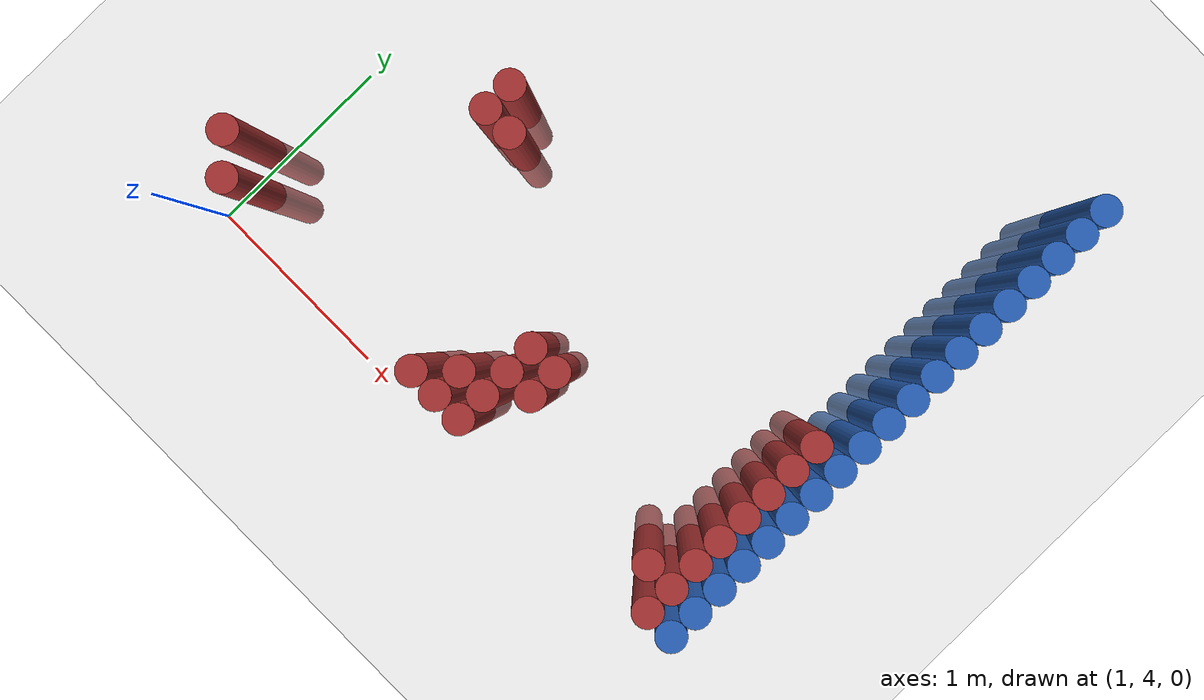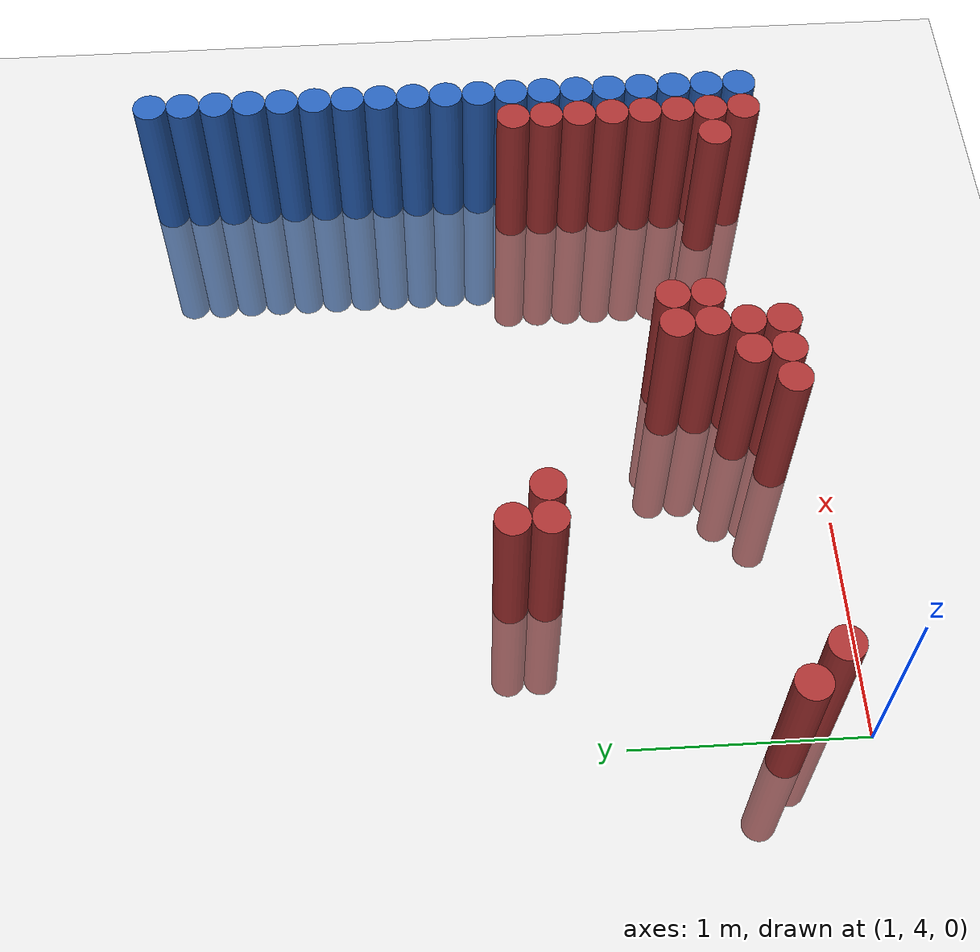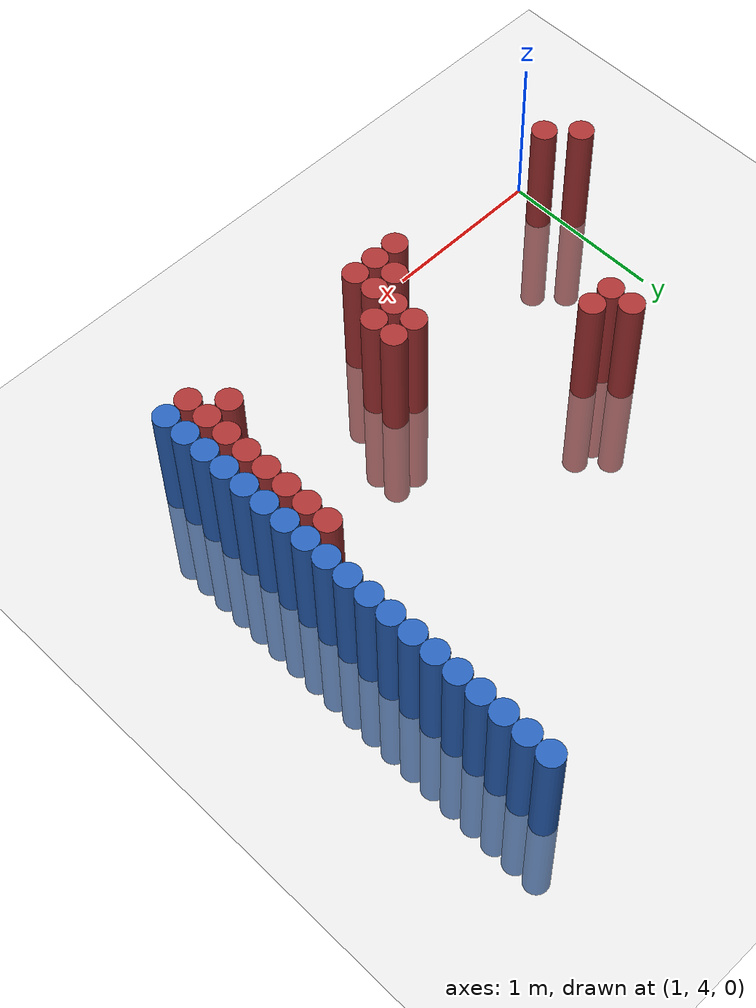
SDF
<sdf version="1.6">
 <world name="default">
  <model name="ground_plane">
   <static>1</static>
   <link name="link">
    <collision name="collision">
     <geometry><plane><normal>0 0 1</normal><size>100 100</size></plane></geometry>
     <surface><friction><ode><mu>100</mu><mu2>50</mu2></ode></friction></surface>
    </collision>
    <visual name="visual">
     <cast_shadows>0</cast_shadows>
     <geometry><plane><normal>0 0 1</normal><size>100 100</size></plane></geometry>
     <material>
      <script><uri>file://media/materials/scripts/gazebo.material</uri><name>Gazebo/Grey</name></script>
     </material>
    </visual>
   </link>
  </model>
  <model name="unit_cylinder_170">
   <static>1</static>
   <pose>3.925000 4.225000 0.000000 0.000000 0.000000 0.000000</pose>
   <link name="link">
    <inertial>
     <mass>1</mass>
     <inertia><ixx>0.145833</ixx><ixy>0</ixy><ixz>0</ixz><iyy>0.145833</iyy><iyz>0</iyz><izz>0.125</izz></inertia>
    </inertial>
    <collision name="collision">
     <geometry><cylinder><radius>0.075000</radius><length>1.5</length></cylinder></geometry>
    </collision>
    <visual name="visual">
     <geometry><cylinder><radius>0.075000</radius><length>1.5</length></cylinder></geometry>
     <material>
      <ambient>0.152000 0.379000 0.720000 1</ambient>
      <diffuse>0.152000 0.379000 0.720000 1</diffuse>
     </material>
     <material>
      <script><name>Gazebo/Grey</name><uri>file://media/materials/scripts/gazebo.material</uri></script>
     </material>
    </visual>
   </link>
  </model>
  <model name="unit_cylinder_172">
   <static>1</static>
   <pose>3.925000 4.375000 0.000000 0.000000 0.000000 0.000000</pose>
   <link name="link">
    <inertial>
     <mass>1</mass>
     <inertia><ixx>0.145833</ixx><ixy>0</ixy><ixz>0</ixz><iyy>0.145833</iyy><iyz>0</iyz><izz>0.125</izz></inertia>
    </inertial>
    <collision name="collision">
     <geometry><cylinder><radius>0.075000</radius><length>1.5</length></cylinder></geometry>
    </collision>
    <visual name="visual">
     <geometry><cylinder><radius>0.075000</radius><length>1.5</length></cylinder></geometry>
     <material>
      <ambient>0.152000 0.379000 0.720000 1</ambient>
      <diffuse>0.152000 0.379000 0.720000 1</diffuse>
     </material>
     <material>
      <script><name>Gazebo/Grey</name><uri>file://media/materials/scripts/gazebo.material</uri></script>
     </material>
    </visual>
   </link>
  </model>
  <model name="unit_cylinder_174">
   <static>1</static>
   <pose>3.925000 4.525000 0.000000 0.000000 0.000000 0.000000</pose>
   <link name="link">
    <inertial>
     <mass>1</mass>
     <inertia><ixx>0.145833</ixx><ixy>0</ixy><ixz>0</ixz><iyy>0.145833</iyy><iyz>0</iyz><izz>0.125</izz></inertia>
    </inertial>
    <collision name="collision">
     <geometry><cylinder><radius>0.075000</radius><length>1.5</length></cylinder></geometry>
    </collision>
    <visual name="visual">
     <geometry><cylinder><radius>0.075000</radius><length>1.5</length></cylinder></geometry>
     <material>
      <ambient>0.152000 0.379000 0.720000 1</ambient>
      <diffuse>0.152000 0.379000 0.720000 1</diffuse>
     </material>
     <material>
      <script><name>Gazebo/Grey</name><uri>file://media/materials/scripts/gazebo.material</uri></script>
     </material>
    </visual>
   </link>
  </model>
  <model name="unit_cylinder_176">
   <static>1</static>
   <pose>3.925000 4.675000 0.000000 0.000000 0.000000 0.000000</pose>
   <link name="link">
    <inertial>
     <mass>1</mass>
     <inertia><ixx>0.145833</ixx><ixy>0</ixy><ixz>0</ixz><iyy>0.145833</iyy><iyz>0</iyz><izz>0.125</izz></inertia>
    </inertial>
    <collision name="collision">
     <geometry><cylinder><radius>0.075000</radius><length>1.5</length></cylinder></geometry>
    </collision>
    <visual name="visual">
     <geometry><cylinder><radius>0.075000</radius><length>1.5</length></cylinder></geometry>
     <material>
      <ambient>0.152000 0.379000 0.720000 1</ambient>
      <diffuse>0.152000 0.379000 0.720000 1</diffuse>
     </material>
     <material>
      <script><name>Gazebo/Grey</name><uri>file://media/materials/scripts/gazebo.material</uri></script>
     </material>
    </visual>
   </link>
  </model>
  <model name="unit_cylinder_178">
   <static>1</static>
   <pose>3.925000 4.825000 0.000000 0.000000 0.000000 0.000000</pose>
   <link name="link">
    <inertial>
     <mass>1</mass>
     <inertia><ixx>0.145833</ixx><ixy>0</ixy><ixz>0</ixz><iyy>0.145833</iyy><iyz>0</iyz><izz>0.125</izz></inertia>
    </inertial>
    <collision name="collision">
     <geometry><cylinder><radius>0.075000</radius><length>1.5</length></cylinder></geometry>
    </collision>
    <visual name="visual">
     <geometry><cylinder><radius>0.075000</radius><length>1.5</length></cylinder></geometry>
     <material>
      <ambient>0.152000 0.379000 0.720000 1</ambient>
      <diffuse>0.152000 0.379000 0.720000 1</diffuse>
     </material>
     <material>
      <script><name>Gazebo/Grey</name><uri>file://media/materials/scripts/gazebo.material</uri></script>
     </material>
    </visual>
   </link>
  </model>
  <model name="unit_cylinder_180">
   <static>1</static>
   <pose>3.925000 4.975000 0.000000 0.000000 0.000000 0.000000</pose>
   <link name="link">
    <inertial>
     <mass>1</mass>
     <inertia><ixx>0.145833</ixx><ixy>0</ixy><ixz>0</ixz><iyy>0.145833</iyy><iyz>0</iyz><izz>0.125</izz></inertia>
    </inertial>
    <collision name="collision">
     <geometry><cylinder><radius>0.075000</radius><length>1.5</length></cylinder></geometry>
    </collision>
    <visual name="visual">
     <geometry><cylinder><radius>0.075000</radius><length>1.5</length></cylinder></geometry>
     <material>
      <ambient>0.152000 0.379000 0.720000 1</ambient>
      <diffuse>0.152000 0.379000 0.720000 1</diffuse>
     </material>
     <material>
      <script><name>Gazebo/Grey</name><uri>file://media/materials/scripts/gazebo.material</uri></script>
     </material>
    </visual>
   </link>
  </model>
  <model name="unit_cylinder_182">
   <static>1</static>
   <pose>3.925000 5.125000 0.000000 0.000000 0.000000 0.000000</pose>
   <link name="link">
    <inertial>
     <mass>1</mass>
     <inertia><ixx>0.145833</ixx><ixy>0</ixy><ixz>0</ixz><iyy>0.145833</iyy><iyz>0</iyz><izz>0.125</izz></inertia>
    </inertial>
    <collision name="collision">
     <geometry><cylinder><radius>0.075000</radius><length>1.5</length></cylinder></geometry>
    </collision>
    <visual name="visual">
     <geometry><cylinder><radius>0.075000</radius><length>1.5</length></cylinder></geometry>
     <material>
      <ambient>0.152000 0.379000 0.720000 1</ambient>
      <diffuse>0.152000 0.379000 0.720000 1</diffuse>
     </material>
     <material>
      <script><name>Gazebo/Grey</name><uri>file://media/materials/scripts/gazebo.material</uri></script>
     </material>
    </visual>
   </link>
  </model>
  <model name="unit_cylinder_184">
   <static>1</static>
   <pose>3.925000 5.275000 0.000000 0.000000 0.000000 0.000000</pose>
   <link name="link">
    <inertial>
     <mass>1</mass>
     <inertia><ixx>0.145833</ixx><ixy>0</ixy><ixz>0</ixz><iyy>0.145833</iyy><iyz>0</iyz><izz>0.125</izz></inertia>
    </inertial>
    <collision name="collision">
     <geometry><cylinder><radius>0.075000</radius><length>1.5</length></cylinder></geometry>
    </collision>
    <visual name="visual">
     <geometry><cylinder><radius>0.075000</radius><length>1.5</length></cylinder></geometry>
     <material>
      <ambient>0.152000 0.379000 0.720000 1</ambient>
      <diffuse>0.152000 0.379000 0.720000 1</diffuse>
     </material>
     <material>
      <script><name>Gazebo/Grey</name><uri>file://media/materials/scripts/gazebo.material</uri></script>
     </material>
    </visual>
   </link>
  </model>
  <model name="unit_cylinder_186">
   <static>1</static>
   <pose>3.925000 5.425000 0.000000 0.000000 0.000000 0.000000</pose>
   <link name="link">
    <inertial>
     <mass>1</mass>
     <inertia><ixx>0.145833</ixx><ixy>0</ixy><ixz>0</ixz><iyy>0.145833</iyy><iyz>0</iyz><izz>0.125</izz></inertia>
    </inertial>
    <collision name="collision">
     <geometry><cylinder><radius>0.075000</radius><length>1.5</length></cylinder></geometry>
    </collision>
    <visual name="visual">
     <geometry><cylinder><radius>0.075000</radius><length>1.5</length></cylinder></geometry>
     <material>
      <ambient>0.152000 0.379000 0.720000 1</ambient>
      <diffuse>0.152000 0.379000 0.720000 1</diffuse>
     </material>
     <material>
      <script><name>Gazebo/Grey</name><uri>file://media/materials/scripts/gazebo.material</uri></script>
     </material>
    </visual>
   </link>
  </model>
  <model name="unit_cylinder_188">
   <static>1</static>
   <pose>3.925000 5.575000 0.000000 0.000000 0.000000 0.000000</pose>
   <link name="link">
    <inertial>
     <mass>1</mass>
     <inertia><ixx>0.145833</ixx><ixy>0</ixy><ixz>0</ixz><iyy>0.145833</iyy><iyz>0</iyz><izz>0.125</izz></inertia>
    </inertial>
    <collision name="collision">
     <geometry><cylinder><radius>0.075000</radius><length>1.5</length></cylinder></geometry>
    </collision>
    <visual name="visual">
     <geometry><cylinder><radius>0.075000</radius><length>1.5</length></cylinder></geometry>
     <material>
      <ambient>0.152000 0.379000 0.720000 1</ambient>
      <diffuse>0.152000 0.379000 0.720000 1</diffuse>
     </material>
     <material>
      <script><name>Gazebo/Grey</name><uri>file://media/materials/scripts/gazebo.material</uri></script>
     </material>
    </visual>
   </link>
  </model>
  <model name="unit_cylinder_190">
   <static>1</static>
   <pose>3.925000 5.725000 0.000000 0.000000 0.000000 0.000000</pose>
   <link name="link">
    <inertial>
     <mass>1</mass>
     <inertia><ixx>0.145833</ixx><ixy>0</ixy><ixz>0</ixz><iyy>0.145833</iyy><iyz>0</iyz><izz>0.125</izz></inertia>
    </inertial>
    <collision name="collision">
     <geometry><cylinder><radius>0.075000</radius><length>1.5</length></cylinder></geometry>
    </collision>
    <visual name="visual">
     <geometry><cylinder><radius>0.075000</radius><length>1.5</length></cylinder></geometry>
     <material>
      <ambient>0.152000 0.379000 0.720000 1</ambient>
      <diffuse>0.152000 0.379000 0.720000 1</diffuse>
     </material>
     <material>
      <script><name>Gazebo/Grey</name><uri>file://media/materials/scripts/gazebo.material</uri></script>
     </material>
    </visual>
   </link>
  </model>
  <model name="unit_cylinder_192">
   <static>1</static>
   <pose>3.925000 5.875000 0.000000 0.000000 0.000000 0.000000</pose>
   <link name="link">
    <inertial>
     <mass>1</mass>
     <inertia><ixx>0.145833</ixx><ixy>0</ixy><ixz>0</ixz><iyy>0.145833</iyy><iyz>0</iyz><izz>0.125</izz></inertia>
    </inertial>
    <collision name="collision">
     <geometry><cylinder><radius>0.075000</radius><length>1.5</length></cylinder></geometry>
    </collision>
    <visual name="visual">
     <geometry><cylinder><radius>0.075000</radius><length>1.5</length></cylinder></geometry>
     <material>
      <ambient>0.152000 0.379000 0.720000 1</ambient>
      <diffuse>0.152000 0.379000 0.720000 1</diffuse>
     </material>
     <material>
      <script><name>Gazebo/Grey</name><uri>file://media/materials/scripts/gazebo.material</uri></script>
     </material>
    </visual>
   </link>
  </model>
  <model name="unit_cylinder_194">
   <static>1</static>
   <pose>3.925000 6.025000 0.000000 0.000000 0.000000 0.000000</pose>
   <link name="link">
    <inertial>
     <mass>1</mass>
     <inertia><ixx>0.145833</ixx><ixy>0</ixy><ixz>0</ixz><iyy>0.145833</iyy><iyz>0</iyz><izz>0.125</izz></inertia>
    </inertial>
    <collision name="collision">
     <geometry><cylinder><radius>0.075000</radius><length>1.5</length></cylinder></geometry>
    </collision>
    <visual name="visual">
     <geometry><cylinder><radius>0.075000</radius><length>1.5</length></cylinder></geometry>
     <material>
      <ambient>0.152000 0.379000 0.720000 1</ambient>
      <diffuse>0.152000 0.379000 0.720000 1</diffuse>
     </material>
     <material>
      <script><name>Gazebo/Grey</name><uri>file://media/materials/scripts/gazebo.material</uri></script>
     </material>
    </visual>
   </link>
  </model>
  <model name="unit_cylinder_196">
   <static>1</static>
   <pose>3.925000 6.175000 0.000000 0.000000 0.000000 0.000000</pose>
   <link name="link">
    <inertial>
     <mass>1</mass>
     <inertia><ixx>0.145833</ixx><ixy>0</ixy><ixz>0</ixz><iyy>0.145833</iyy><iyz>0</iyz><izz>0.125</izz></inertia>
    </inertial>
    <collision name="collision">
     <geometry><cylinder><radius>0.075000</radius><length>1.5</length></cylinder></geometry>
    </collision>
    <visual name="visual">
     <geometry><cylinder><radius>0.075000</radius><length>1.5</length></cylinder></geometry>
     <material>
      <ambient>0.152000 0.379000 0.720000 1</ambient>
      <diffuse>0.152000 0.379000 0.720000 1</diffuse>
     </material>
     <material>
      <script><name>Gazebo/Grey</name><uri>file://media/materials/scripts/gazebo.material</uri></script>
     </material>
    </visual>
   </link>
  </model>
  <model name="unit_cylinder_198">
   <static>1</static>
   <pose>3.925000 6.325000 0.000000 0.000000 0.000000 0.000000</pose>
   <link name="link">
    <inertial>
     <mass>1</mass>
     <inertia><ixx>0.145833</ixx><ixy>0</ixy><ixz>0</ixz><iyy>0.145833</iyy><iyz>0</iyz><izz>0.125</izz></inertia>
    </inertial>
    <collision name="collision">
     <geometry><cylinder><radius>0.075000</radius><length>1.5</length></cylinder></geometry>
    </collision>
    <visual name="visual">
     <geometry><cylinder><radius>0.075000</radius><length>1.5</length></cylinder></geometry>
     <material>
      <ambient>0.152000 0.379000 0.720000 1</ambient>
      <diffuse>0.152000 0.379000 0.720000 1</diffuse>
     </material>
     <material>
      <script><name>Gazebo/Grey</name><uri>file://media/materials/scripts/gazebo.material</uri></script>
     </material>
    </visual>
   </link>
  </model>
  <model name="unit_cylinder_200">
   <static>1</static>
   <pose>3.925000 6.475000 0.000000 0.000000 0.000000 0.000000</pose>
   <link name="link">
    <inertial>
     <mass>1</mass>
     <inertia><ixx>0.145833</ixx><ixy>0</ixy><ixz>0</ixz><iyy>0.145833</iyy><iyz>0</iyz><izz>0.125</izz></inertia>
    </inertial>
    <collision name="collision">
     <geometry><cylinder><radius>0.075000</radius><length>1.5</length></cylinder></geometry>
    </collision>
    <visual name="visual">
     <geometry><cylinder><radius>0.075000</radius><length>1.5</length></cylinder></geometry>
     <material>
      <ambient>0.152000 0.379000 0.720000 1</ambient>
      <diffuse>0.152000 0.379000 0.720000 1</diffuse>
     </material>
     <material>
      <script><name>Gazebo/Grey</name><uri>file://media/materials/scripts/gazebo.material</uri></script>
     </material>
    </visual>
   </link>
  </model>
  <model name="unit_cylinder_202">
   <static>1</static>
   <pose>3.925000 6.625000 0.000000 0.000000 0.000000 0.000000</pose>
   <link name="link">
    <inertial>
     <mass>1</mass>
     <inertia><ixx>0.145833</ixx><ixy>0</ixy><ixz>0</ixz><iyy>0.145833</iyy><iyz>0</iyz><izz>0.125</izz></inertia>
    </inertial>
    <collision name="collision">
     <geometry><cylinder><radius>0.075000</radius><length>1.5</length></cylinder></geometry>
    </collision>
    <visual name="visual">
     <geometry><cylinder><radius>0.075000</radius><length>1.5</length></cylinder></geometry>
     <material>
      <ambient>0.152000 0.379000 0.720000 1</ambient>
      <diffuse>0.152000 0.379000 0.720000 1</diffuse>
     </material>
     <material>
      <script><name>Gazebo/Grey</name><uri>file://media/materials/scripts/gazebo.material</uri></script>
     </material>
    </visual>
   </link>
  </model>
  <model name="unit_cylinder_204">
   <static>1</static>
   <pose>3.925000 6.775000 0.000000 0.000000 0.000000 0.000000</pose>
   <link name="link">
    <inertial>
     <mass>1</mass>
     <inertia><ixx>0.145833</ixx><ixy>0</ixy><ixz>0</ixz><iyy>0.145833</iyy><iyz>0</iyz><izz>0.125</izz></inertia>
    </inertial>
    <collision name="collision">
     <geometry><cylinder><radius>0.075000</radius><length>1.5</length></cylinder></geometry>
    </collision>
    <visual name="visual">
     <geometry><cylinder><radius>0.075000</radius><length>1.5</length></cylinder></geometry>
     <material>
      <ambient>0.152000 0.379000 0.720000 1</ambient>
      <diffuse>0.152000 0.379000 0.720000 1</diffuse>
     </material>
     <material>
      <script><name>Gazebo/Grey</name><uri>file://media/materials/scripts/gazebo.material</uri></script>
     </material>
    </visual>
   </link>
  </model>
  <model name="unit_cylinder_206">
   <static>1</static>
   <pose>3.925000 6.925000 0.000000 0.000000 0.000000 0.000000</pose>
   <link name="link">
    <inertial>
     <mass>1</mass>
     <inertia><ixx>0.145833</ixx><ixy>0</ixy><ixz>0</ixz><iyy>0.145833</iyy><iyz>0</iyz><izz>0.125</izz></inertia>
    </inertial>
    <collision name="collision">
     <geometry><cylinder><radius>0.075000</radius><length>1.5</length></cylinder></geometry>
    </collision>
    <visual name="visual">
     <geometry><cylinder><radius>0.075000</radius><length>1.5</length></cylinder></geometry>
     <material>
      <ambient>0.152000 0.379000 0.720000 1</ambient>
      <diffuse>0.152000 0.379000 0.720000 1</diffuse>
     </material>
     <material>
      <script><name>Gazebo/Grey</name><uri>file://media/materials/scripts/gazebo.material</uri></script>
     </material>
    </visual>
   </link>
  </model>
  <model name="unit_cylinder_417">
   <static>1</static>
   <pose>0.925000 4.375000 0.000000 0.000000 0.000000 0.000000</pose>
   <link name="link">
    <inertial>
     <mass>1</mass>
     <inertia><ixx>0.145833</ixx><ixy>0</ixy><ixz>0</ixz><iyy>0.145833</iyy><iyz>0</iyz><izz>0.125</izz></inertia>
    </inertial>
    <collision name="collision">
     <geometry><cylinder><radius>0.075000</radius><length>1.5</length></cylinder></geometry>
    </collision>
    <visual name="visual">
     <geometry><cylinder><radius>0.075000</radius><length>1.5</length></cylinder></geometry>
     <material>
      <ambient>0.648000 0.192000 0.192000 1</ambient>
      <diffuse>0.648000 0.192000 0.192000 1</diffuse>
     </material>
     <material>
      <script><name>Gazebo/Grey</name><uri>file://media/materials/scripts/gazebo.material</uri></script>
     </material>
    </visual>
   </link>
  </model>
  <model name="unit_cylinder_419">
   <static>1</static>
   <pose>1.075000 4.225000 0.000000 0.000000 0.000000 0.000000</pose>
   <link name="link">
    <inertial>
     <mass>1</mass>
     <inertia><ixx>0.145833</ixx><ixy>0</ixy><ixz>0</ixz><iyy>0.145833</iyy><iyz>0</iyz><izz>0.125</izz></inertia>
    </inertial>
    <collision name="collision">
     <geometry><cylinder><radius>0.075000</radius><length>1.5</length></cylinder></geometry>
    </collision>
    <visual name="visual">
     <geometry><cylinder><radius>0.075000</radius><length>1.5</length></cylinder></geometry>
     <material>
      <ambient>0.648000 0.192000 0.192000 1</ambient>
      <diffuse>0.648000 0.192000 0.192000 1</diffuse>
     </material>
     <material>
      <script><name>Gazebo/Grey</name><uri>file://media/materials/scripts/gazebo.material</uri></script>
     </material>
    </visual>
   </link>
  </model>
  <model name="unit_cylinder_429">
   <static>1</static>
   <pose>1.675000 5.275000 0.000000 0.000000 0.000000 0.000000</pose>
   <link name="link">
    <inertial>
     <mass>1</mass>
     <inertia><ixx>0.145833</ixx><ixy>0</ixy><ixz>0</ixz><iyy>0.145833</iyy><iyz>0</iyz><izz>0.125</izz></inertia>
    </inertial>
    <collision name="collision">
     <geometry><cylinder><radius>0.075000</radius><length>1.5</length></cylinder></geometry>
    </collision>
    <visual name="visual">
     <geometry><cylinder><radius>0.075000</radius><length>1.5</length></cylinder></geometry>
     <material>
      <ambient>0.648000 0.192000 0.192000 1</ambient>
      <diffuse>0.648000 0.192000 0.192000 1</diffuse>
     </material>
     <material>
      <script><name>Gazebo/Grey</name><uri>file://media/materials/scripts/gazebo.material</uri></script>
     </material>
    </visual>
   </link>
  </model>
  <model name="unit_cylinder_430">
   <static>1</static>
   <pose>1.675000 5.425000 0.000000 0.000000 0.000000 0.000000</pose>
   <link name="link">
    <inertial>
     <mass>1</mass>
     <inertia><ixx>0.145833</ixx><ixy>0</ixy><ixz>0</ixz><iyy>0.145833</iyy><iyz>0</iyz><izz>0.125</izz></inertia>
    </inertial>
    <collision name="collision">
     <geometry><cylinder><radius>0.075000</radius><length>1.5</length></cylinder></geometry>
    </collision>
    <visual name="visual">
     <geometry><cylinder><radius>0.075000</radius><length>1.5</length></cylinder></geometry>
     <material>
      <ambient>0.648000 0.192000 0.192000 1</ambient>
      <diffuse>0.648000 0.192000 0.192000 1</diffuse>
     </material>
     <material>
      <script><name>Gazebo/Grey</name><uri>file://media/materials/scripts/gazebo.material</uri></script>
     </material>
    </visual>
   </link>
  </model>
  <model name="unit_cylinder_434">
   <static>1</static>
   <pose>1.825000 5.275000 0.000000 0.000000 0.000000 0.000000</pose>
   <link name="link">
    <inertial>
     <mass>1</mass>
     <inertia><ixx>0.145833</ixx><ixy>0</ixy><ixz>0</ixz><iyy>0.145833</iyy><iyz>0</iyz><izz>0.125</izz></inertia>
    </inertial>
    <collision name="collision">
     <geometry><cylinder><radius>0.075000</radius><length>1.5</length></cylinder></geometry>
    </collision>
    <visual name="visual">
     <geometry><cylinder><radius>0.075000</radius><length>1.5</length></cylinder></geometry>
     <material>
      <ambient>0.648000 0.192000 0.192000 1</ambient>
      <diffuse>0.648000 0.192000 0.192000 1</diffuse>
     </material>
     <material>
      <script><name>Gazebo/Grey</name><uri>file://media/materials/scripts/gazebo.material</uri></script>
     </material>
    </visual>
   </link>
  </model>
  <model name="unit_cylinder_436">
   <static>1</static>
   <pose>2.275000 4.225000 0.000000 0.000000 0.000000 0.000000</pose>
   <link name="link">
    <inertial>
     <mass>1</mass>
     <inertia><ixx>0.145833</ixx><ixy>0</ixy><ixz>0</ixz><iyy>0.145833</iyy><iyz>0</iyz><izz>0.125</izz></inertia>
    </inertial>
    <collision name="collision">
     <geometry><cylinder><radius>0.075000</radius><length>1.5</length></cylinder></geometry>
    </collision>
    <visual name="visual">
     <geometry><cylinder><radius>0.075000</radius><length>1.5</length></cylinder></geometry>
     <material>
      <ambient>0.648000 0.192000 0.192000 1</ambient>
      <diffuse>0.648000 0.192000 0.192000 1</diffuse>
     </material>
     <material>
      <script><name>Gazebo/Grey</name><uri>file://media/materials/scripts/gazebo.material</uri></script>
     </material>
    </visual>
   </link>
  </model>
  <model name="unit_cylinder_437">
   <static>1</static>
   <pose>2.425000 4.225000 0.000000 0.000000 0.000000 0.000000</pose>
   <link name="link">
    <inertial>
     <mass>1</mass>
     <inertia><ixx>0.145833</ixx><ixy>0</ixy><ixz>0</ixz><iyy>0.145833</iyy><iyz>0</iyz><izz>0.125</izz></inertia>
    </inertial>
    <collision name="collision">
     <geometry><cylinder><radius>0.075000</radius><length>1.5</length></cylinder></geometry>
    </collision>
    <visual name="visual">
     <geometry><cylinder><radius>0.075000</radius><length>1.5</length></cylinder></geometry>
     <material>
      <ambient>0.648000 0.192000 0.192000 1</ambient>
      <diffuse>0.648000 0.192000 0.192000 1</diffuse>
     </material>
     <material>
      <script><name>Gazebo/Grey</name><uri>file://media/materials/scripts/gazebo.material</uri></script>
     </material>
    </visual>
   </link>
  </model>
  <model name="unit_cylinder_438">
   <static>1</static>
   <pose>2.425000 4.375000 0.000000 0.000000 0.000000 0.000000</pose>
   <link name="link">
    <inertial>
     <mass>1</mass>
     <inertia><ixx>0.145833</ixx><ixy>0</ixy><ixz>0</ixz><iyy>0.145833</iyy><iyz>0</iyz><izz>0.125</izz></inertia>
    </inertial>
    <collision name="collision">
     <geometry><cylinder><radius>0.075000</radius><length>1.5</length></cylinder></geometry>
    </collision>
    <visual name="visual">
     <geometry><cylinder><radius>0.075000</radius><length>1.5</length></cylinder></geometry>
     <material>
      <ambient>0.648000 0.192000 0.192000 1</ambient>
      <diffuse>0.648000 0.192000 0.192000 1</diffuse>
     </material>
     <material>
      <script><name>Gazebo/Grey</name><uri>file://media/materials/scripts/gazebo.material</uri></script>
     </material>
    </visual>
   </link>
  </model>
  <model name="unit_cylinder_439">
   <static>1</static>
   <pose>2.575000 4.225000 0.000000 0.000000 0.000000 0.000000</pose>
   <link name="link">
    <inertial>
     <mass>1</mass>
     <inertia><ixx>0.145833</ixx><ixy>0</ixy><ixz>0</ixz><iyy>0.145833</iyy><iyz>0</iyz><izz>0.125</izz></inertia>
    </inertial>
    <collision name="collision">
     <geometry><cylinder><radius>0.075000</radius><length>1.5</length></cylinder></geometry>
    </collision>
    <visual name="visual">
     <geometry><cylinder><radius>0.075000</radius><length>1.5</length></cylinder></geometry>
     <material>
      <ambient>0.648000 0.192000 0.192000 1</ambient>
      <diffuse>0.648000 0.192000 0.192000 1</diffuse>
     </material>
     <material>
      <script><name>Gazebo/Grey</name><uri>file://media/materials/scripts/gazebo.material</uri></script>
     </material>
    </visual>
   </link>
  </model>
  <model name="unit_cylinder_440">
   <static>1</static>
   <pose>2.575000 4.375000 0.000000 0.000000 0.000000 0.000000</pose>
   <link name="link">
    <inertial>
     <mass>1</mass>
     <inertia><ixx>0.145833</ixx><ixy>0</ixy><ixz>0</ixz><iyy>0.145833</iyy><iyz>0</iyz><izz>0.125</izz></inertia>
    </inertial>
    <collision name="collision">
     <geometry><cylinder><radius>0.075000</radius><length>1.5</length></cylinder></geometry>
    </collision>
    <visual name="visual">
     <geometry><cylinder><radius>0.075000</radius><length>1.5</length></cylinder></geometry>
     <material>
      <ambient>0.648000 0.192000 0.192000 1</ambient>
      <diffuse>0.648000 0.192000 0.192000 1</diffuse>
     </material>
     <material>
      <script><name>Gazebo/Grey</name><uri>file://media/materials/scripts/gazebo.material</uri></script>
     </material>
    </visual>
   </link>
  </model>
  <model name="unit_cylinder_441">
   <static>1</static>
   <pose>2.575000 4.525000 0.000000 0.000000 0.000000 0.000000</pose>
   <link name="link">
    <inertial>
     <mass>1</mass>
     <inertia><ixx>0.145833</ixx><ixy>0</ixy><ixz>0</ixz><iyy>0.145833</iyy><iyz>0</iyz><izz>0.125</izz></inertia>
    </inertial>
    <collision name="collision">
     <geometry><cylinder><radius>0.075000</radius><length>1.5</length></cylinder></geometry>
    </collision>
    <visual name="visual">
     <geometry><cylinder><radius>0.075000</radius><length>1.5</length></cylinder></geometry>
     <material>
      <ambient>0.648000 0.192000 0.192000 1</ambient>
      <diffuse>0.648000 0.192000 0.192000 1</diffuse>
     </material>
     <material>
      <script><name>Gazebo/Grey</name><uri>file://media/materials/scripts/gazebo.material</uri></script>
     </material>
    </visual>
   </link>
  </model>
  <model name="unit_cylinder_442">
   <static>1</static>
   <pose>2.575000 4.675000 0.000000 0.000000 0.000000 0.000000</pose>
   <link name="link">
    <inertial>
     <mass>1</mass>
     <inertia><ixx>0.145833</ixx><ixy>0</ixy><ixz>0</ixz><iyy>0.145833</iyy><iyz>0</iyz><izz>0.125</izz></inertia>
    </inertial>
    <collision name="collision">
     <geometry><cylinder><radius>0.075000</radius><length>1.5</length></cylinder></geometry>
    </collision>
    <visual name="visual">
     <geometry><cylinder><radius>0.075000</radius><length>1.5</length></cylinder></geometry>
     <material>
      <ambient>0.648000 0.192000 0.192000 1</ambient>
      <diffuse>0.648000 0.192000 0.192000 1</diffuse>
     </material>
     <material>
      <script><name>Gazebo/Grey</name><uri>file://media/materials/scripts/gazebo.material</uri></script>
     </material>
    </visual>
   </link>
  </model>
  <model name="unit_cylinder_449">
   <static>1</static>
   <pose>2.725000 4.525000 0.000000 0.000000 0.000000 0.000000</pose>
   <link name="link">
    <inertial>
     <mass>1</mass>
     <inertia><ixx>0.145833</ixx><ixy>0</ixy><ixz>0</ixz><iyy>0.145833</iyy><iyz>0</iyz><izz>0.125</izz></inertia>
    </inertial>
    <collision name="collision">
     <geometry><cylinder><radius>0.075000</radius><length>1.5</length></cylinder></geometry>
    </collision>
    <visual name="visual">
     <geometry><cylinder><radius>0.075000</radius><length>1.5</length></cylinder></geometry>
     <material>
      <ambient>0.648000 0.192000 0.192000 1</ambient>
      <diffuse>0.648000 0.192000 0.192000 1</diffuse>
     </material>
     <material>
      <script><name>Gazebo/Grey</name><uri>file://media/materials/scripts/gazebo.material</uri></script>
     </material>
    </visual>
   </link>
  </model>
  <model name="unit_cylinder_450">
   <static>1</static>
   <pose>2.725000 4.675000 0.000000 0.000000 0.000000 0.000000</pose>
   <link name="link">
    <inertial>
     <mass>1</mass>
     <inertia><ixx>0.145833</ixx><ixy>0</ixy><ixz>0</ixz><iyy>0.145833</iyy><iyz>0</iyz><izz>0.125</izz></inertia>
    </inertial>
    <collision name="collision">
     <geometry><cylinder><radius>0.075000</radius><length>1.5</length></cylinder></geometry>
    </collision>
    <visual name="visual">
     <geometry><cylinder><radius>0.075000</radius><length>1.5</length></cylinder></geometry>
     <material>
      <ambient>0.648000 0.192000 0.192000 1</ambient>
      <diffuse>0.648000 0.192000 0.192000 1</diffuse>
     </material>
     <material>
      <script><name>Gazebo/Grey</name><uri>file://media/materials/scripts/gazebo.material</uri></script>
     </material>
    </visual>
   </link>
  </model>
  <model name="unit_cylinder_477">
   <static>1</static>
   <pose>3.625000 4.375000 0.000000 0.000000 0.000000 0.000000</pose>
   <link name="link">
    <inertial>
     <mass>1</mass>
     <inertia><ixx>0.145833</ixx><ixy>0</ixy><ixz>0</ixz><iyy>0.145833</iyy><iyz>0</iyz><izz>0.125</izz></inertia>
    </inertial>
    <collision name="collision">
     <geometry><cylinder><radius>0.075000</radius><length>1.5</length></cylinder></geometry>
    </collision>
    <visual name="visual">
     <geometry><cylinder><radius>0.075000</radius><length>1.5</length></cylinder></geometry>
     <material>
      <ambient>0.648000 0.192000 0.192000 1</ambient>
      <diffuse>0.648000 0.192000 0.192000 1</diffuse>
     </material>
     <material>
      <script><name>Gazebo/Grey</name><uri>file://media/materials/scripts/gazebo.material</uri></script>
     </material>
    </visual>
   </link>
  </model>
  <model name="unit_cylinder_497">
   <static>1</static>
   <pose>3.775000 4.225000 0.000000 0.000000 0.000000 0.000000</pose>
   <link name="link">
    <inertial>
     <mass>1</mass>
     <inertia><ixx>0.145833</ixx><ixy>0</ixy><ixz>0</ixz><iyy>0.145833</iyy><iyz>0</iyz><izz>0.125</izz></inertia>
    </inertial>
    <collision name="collision">
     <geometry><cylinder><radius>0.075000</radius><length>1.5</length></cylinder></geometry>
    </collision>
    <visual name="visual">
     <geometry><cylinder><radius>0.075000</radius><length>1.5</length></cylinder></geometry>
     <material>
      <ambient>0.648000 0.192000 0.192000 1</ambient>
      <diffuse>0.648000 0.192000 0.192000 1</diffuse>
     </material>
     <material>
      <script><name>Gazebo/Grey</name><uri>file://media/materials/scripts/gazebo.material</uri></script>
     </material>
    </visual>
   </link>
  </model>
  <model name="unit_cylinder_498">
   <static>1</static>
   <pose>3.775000 4.375000 0.000000 0.000000 0.000000 0.000000</pose>
   <link name="link">
    <inertial>
     <mass>1</mass>
     <inertia><ixx>0.145833</ixx><ixy>0</ixy><ixz>0</ixz><iyy>0.145833</iyy><iyz>0</iyz><izz>0.125</izz></inertia>
    </inertial>
    <collision name="collision">
     <geometry><cylinder><radius>0.075000</radius><length>1.5</length></cylinder></geometry>
    </collision>
    <visual name="visual">
     <geometry><cylinder><radius>0.075000</radius><length>1.5</length></cylinder></geometry>
     <material>
      <ambient>0.648000 0.192000 0.192000 1</ambient>
      <diffuse>0.648000 0.192000 0.192000 1</diffuse>
     </material>
     <material>
      <script><name>Gazebo/Grey</name><uri>file://media/materials/scripts/gazebo.material</uri></script>
     </material>
    </visual>
   </link>
  </model>
  <model name="unit_cylinder_499">
   <static>1</static>
   <pose>3.775000 4.525000 0.000000 0.000000 0.000000 0.000000</pose>
   <link name="link">
    <inertial>
     <mass>1</mass>
     <inertia><ixx>0.145833</ixx><ixy>0</ixy><ixz>0</ixz><iyy>0.145833</iyy><iyz>0</iyz><izz>0.125</izz></inertia>
    </inertial>
    <collision name="collision">
     <geometry><cylinder><radius>0.075000</radius><length>1.5</length></cylinder></geometry>
    </collision>
    <visual name="visual">
     <geometry><cylinder><radius>0.075000</radius><length>1.5</length></cylinder></geometry>
     <material>
      <ambient>0.648000 0.192000 0.192000 1</ambient>
      <diffuse>0.648000 0.192000 0.192000 1</diffuse>
     </material>
     <material>
      <script><name>Gazebo/Grey</name><uri>file://media/materials/scripts/gazebo.material</uri></script>
     </material>
    </visual>
   </link>
  </model>
  <model name="unit_cylinder_500">
   <static>1</static>
   <pose>3.775000 4.675000 0.000000 0.000000 0.000000 0.000000</pose>
   <link name="link">
    <inertial>
     <mass>1</mass>
     <inertia><ixx>0.145833</ixx><ixy>0</ixy><ixz>0</ixz><iyy>0.145833</iyy><iyz>0</iyz><izz>0.125</izz></inertia>
    </inertial>
    <collision name="collision">
     <geometry><cylinder><radius>0.075000</radius><length>1.5</length></cylinder></geometry>
    </collision>
    <visual name="visual">
     <geometry><cylinder><radius>0.075000</radius><length>1.5</length></cylinder></geometry>
     <material>
      <ambient>0.648000 0.192000 0.192000 1</ambient>
      <diffuse>0.648000 0.192000 0.192000 1</diffuse>
     </material>
     <material>
      <script><name>Gazebo/Grey</name><uri>file://media/materials/scripts/gazebo.material</uri></script>
     </material>
    </visual>
   </link>
  </model>
  <model name="unit_cylinder_501">
   <static>1</static>
   <pose>3.775000 4.825000 0.000000 0.000000 0.000000 0.000000</pose>
   <link name="link">
    <inertial>
     <mass>1</mass>
     <inertia><ixx>0.145833</ixx><ixy>0</ixy><ixz>0</ixz><iyy>0.145833</iyy><iyz>0</iyz><izz>0.125</izz></inertia>
    </inertial>
    <collision name="collision">
     <geometry><cylinder><radius>0.075000</radius><length>1.5</length></cylinder></geometry>
    </collision>
    <visual name="visual">
     <geometry><cylinder><radius>0.075000</radius><length>1.5</length></cylinder></geometry>
     <material>
      <ambient>0.648000 0.192000 0.192000 1</ambient>
      <diffuse>0.648000 0.192000 0.192000 1</diffuse>
     </material>
     <material>
      <script><name>Gazebo/Grey</name><uri>file://media/materials/scripts/gazebo.material</uri></script>
     </material>
    </visual>
   </link>
  </model>
  <model name="unit_cylinder_502">
   <static>1</static>
   <pose>3.775000 4.975000 0.000000 0.000000 0.000000 0.000000</pose>
   <link name="link">
    <inertial>
     <mass>1</mass>
     <inertia><ixx>0.145833</ixx><ixy>0</ixy><ixz>0</ixz><iyy>0.145833</iyy><iyz>0</iyz><izz>0.125</izz></inertia>
    </inertial>
    <collision name="collision">
     <geometry><cylinder><radius>0.075000</radius><length>1.5</length></cylinder></geometry>
    </collision>
    <visual name="visual">
     <geometry><cylinder><radius>0.075000</radius><length>1.5</length></cylinder></geometry>
     <material>
      <ambient>0.648000 0.192000 0.192000 1</ambient>
      <diffuse>0.648000 0.192000 0.192000 1</diffuse>
     </material>
     <material>
      <script><name>Gazebo/Grey</name><uri>file://media/materials/scripts/gazebo.material</uri></script>
     </material>
    </visual>
   </link>
  </model>
  <model name="unit_cylinder_503">
   <static>1</static>
   <pose>3.775000 5.125000 0.000000 0.000000 0.000000 0.000000</pose>
   <link name="link">
    <inertial>
     <mass>1</mass>
     <inertia><ixx>0.145833</ixx><ixy>0</ixy><ixz>0</ixz><iyy>0.145833</iyy><iyz>0</iyz><izz>0.125</izz></inertia>
    </inertial>
    <collision name="collision">
     <geometry><cylinder><radius>0.075000</radius><length>1.5</length></cylinder></geometry>
    </collision>
    <visual name="visual">
     <geometry><cylinder><radius>0.075000</radius><length>1.5</length></cylinder></geometry>
     <material>
      <ambient>0.648000 0.192000 0.192000 1</ambient>
      <diffuse>0.648000 0.192000 0.192000 1</diffuse>
     </material>
     <material>
      <script><name>Gazebo/Grey</name><uri>file://media/materials/scripts/gazebo.material</uri></script>
     </material>
    </visual>
   </link>
  </model>
  <model name="unit_cylinder_504">
   <static>1</static>
   <pose>3.775000 5.275000 0.000000 0.000000 0.000000 0.000000</pose>
   <link name="link">
    <inertial>
     <mass>1</mass>
     <inertia><ixx>0.145833</ixx><ixy>0</ixy><ixz>0</ixz><iyy>0.145833</iyy><iyz>0</iyz><izz>0.125</izz></inertia>
    </inertial>
    <collision name="collision">
     <geometry><cylinder><radius>0.075000</radius><length>1.5</length></cylinder></geometry>
    </collision>
    <visual name="visual">
     <geometry><cylinder><radius>0.075000</radius><length>1.5</length></cylinder></geometry>
     <material>
      <ambient>0.648000 0.192000 0.192000 1</ambient>
      <diffuse>0.648000 0.192000 0.192000 1</diffuse>
     </material>
     <material>
      <script><name>Gazebo/Grey</name><uri>file://media/materials/scripts/gazebo.material</uri></script>
     </material>
    </visual>
   </link>
  </model>
  <model name="unit_cylinder_546">
   <static>1</static>
   <pose>3.925000 4.225000 0.000000 0.000000 0.000000 0.000000</pose>
   <link name="link">
    <inertial>
     <mass>1</mass>
     <inertia><ixx>0.145833</ixx><ixy>0</ixy><ixz>0</ixz><iyy>0.145833</iyy><iyz>0</iyz><izz>0.125</izz></inertia>
    </inertial>
    <collision name="collision">
     <geometry><cylinder><radius>0.075000</radius><length>1.5</length></cylinder></geometry>
    </collision>
    <visual name="visual">
     <geometry><cylinder><radius>0.075000</radius><length>1.5</length></cylinder></geometry>
     <material>
      <ambient>0.152000 0.379000 0.720000 1</ambient>
      <diffuse>0.152000 0.379000 0.720000 1</diffuse>
     </material>
     <material>
      <script><name>Gazebo/Grey</name><uri>file://media/materials/scripts/gazebo.material</uri></script>
     </material>
    </visual>
   </link>
  </model>
  <model name="unit_cylinder_547">
   <static>1</static>
   <pose>3.925000 4.375000 0.000000 0.000000 0.000000 0.000000</pose>
   <link name="link">
    <inertial>
     <mass>1</mass>
     <inertia><ixx>0.145833</ixx><ixy>0</ixy><ixz>0</ixz><iyy>0.145833</iyy><iyz>0</iyz><izz>0.125</izz></inertia>
    </inertial>
    <collision name="collision">
     <geometry><cylinder><radius>0.075000</radius><length>1.5</length></cylinder></geometry>
    </collision>
    <visual name="visual">
     <geometry><cylinder><radius>0.075000</radius><length>1.5</length></cylinder></geometry>
     <material>
      <ambient>0.152000 0.379000 0.720000 1</ambient>
      <diffuse>0.152000 0.379000 0.720000 1</diffuse>
     </material>
     <material>
      <script><name>Gazebo/Grey</name><uri>file://media/materials/scripts/gazebo.material</uri></script>
     </material>
    </visual>
   </link>
  </model>
  <model name="unit_cylinder_548">
   <static>1</static>
   <pose>3.925000 4.525000 0.000000 0.000000 0.000000 0.000000</pose>
   <link name="link">
    <inertial>
     <mass>1</mass>
     <inertia><ixx>0.145833</ixx><ixy>0</ixy><ixz>0</ixz><iyy>0.145833</iyy><iyz>0</iyz><izz>0.125</izz></inertia>
    </inertial>
    <collision name="collision">
     <geometry><cylinder><radius>0.075000</radius><length>1.5</length></cylinder></geometry>
    </collision>
    <visual name="visual">
     <geometry><cylinder><radius>0.075000</radius><length>1.5</length></cylinder></geometry>
     <material>
      <ambient>0.152000 0.379000 0.720000 1</ambient>
      <diffuse>0.152000 0.379000 0.720000 1</diffuse>
     </material>
     <material>
      <script><name>Gazebo/Grey</name><uri>file://media/materials/scripts/gazebo.material</uri></script>
     </material>
    </visual>
   </link>
  </model>
  <model name="unit_cylinder_549">
   <static>1</static>
   <pose>3.925000 4.675000 0.000000 0.000000 0.000000 0.000000</pose>
   <link name="link">
    <inertial>
     <mass>1</mass>
     <inertia><ixx>0.145833</ixx><ixy>0</ixy><ixz>0</ixz><iyy>0.145833</iyy><iyz>0</iyz><izz>0.125</izz></inertia>
    </inertial>
    <collision name="collision">
     <geometry><cylinder><radius>0.075000</radius><length>1.5</length></cylinder></geometry>
    </collision>
    <visual name="visual">
     <geometry><cylinder><radius>0.075000</radius><length>1.5</length></cylinder></geometry>
     <material>
      <ambient>0.152000 0.379000 0.720000 1</ambient>
      <diffuse>0.152000 0.379000 0.720000 1</diffuse>
     </material>
     <material>
      <script><name>Gazebo/Grey</name><uri>file://media/materials/scripts/gazebo.material</uri></script>
     </material>
    </visual>
   </link>
  </model>
  <model name="unit_cylinder_550">
   <static>1</static>
   <pose>3.925000 4.825000 0.000000 0.000000 0.000000 0.000000</pose>
   <link name="link">
    <inertial>
     <mass>1</mass>
     <inertia><ixx>0.145833</ixx><ixy>0</ixy><ixz>0</ixz><iyy>0.145833</iyy><iyz>0</iyz><izz>0.125</izz></inertia>
    </inertial>
    <collision name="collision">
     <geometry><cylinder><radius>0.075000</radius><length>1.5</length></cylinder></geometry>
    </collision>
    <visual name="visual">
     <geometry><cylinder><radius>0.075000</radius><length>1.5</length></cylinder></geometry>
     <material>
      <ambient>0.152000 0.379000 0.720000 1</ambient>
      <diffuse>0.152000 0.379000 0.720000 1</diffuse>
     </material>
     <material>
      <script><name>Gazebo/Grey</name><uri>file://media/materials/scripts/gazebo.material</uri></script>
     </material>
    </visual>
   </link>
  </model>
  <model name="unit_cylinder_551">
   <static>1</static>
   <pose>3.925000 4.975000 0.000000 0.000000 0.000000 0.000000</pose>
   <link name="link">
    <inertial>
     <mass>1</mass>
     <inertia><ixx>0.145833</ixx><ixy>0</ixy><ixz>0</ixz><iyy>0.145833</iyy><iyz>0</iyz><izz>0.125</izz></inertia>
    </inertial>
    <collision name="collision">
     <geometry><cylinder><radius>0.075000</radius><length>1.5</length></cylinder></geometry>
    </collision>
    <visual name="visual">
     <geometry><cylinder><radius>0.075000</radius><length>1.5</length></cylinder></geometry>
     <material>
      <ambient>0.152000 0.379000 0.720000 1</ambient>
      <diffuse>0.152000 0.379000 0.720000 1</diffuse>
     </material>
     <material>
      <script><name>Gazebo/Grey</name><uri>file://media/materials/scripts/gazebo.material</uri></script>
     </material>
    </visual>
   </link>
  </model>
  <model name="unit_cylinder_552">
   <static>1</static>
   <pose>3.925000 5.125000 0.000000 0.000000 0.000000 0.000000</pose>
   <link name="link">
    <inertial>
     <mass>1</mass>
     <inertia><ixx>0.145833</ixx><ixy>0</ixy><ixz>0</ixz><iyy>0.145833</iyy><iyz>0</iyz><izz>0.125</izz></inertia>
    </inertial>
    <collision name="collision">
     <geometry><cylinder><radius>0.075000</radius><length>1.5</length></cylinder></geometry>
    </collision>
    <visual name="visual">
     <geometry><cylinder><radius>0.075000</radius><length>1.5</length></cylinder></geometry>
     <material>
      <ambient>0.152000 0.379000 0.720000 1</ambient>
      <diffuse>0.152000 0.379000 0.720000 1</diffuse>
     </material>
     <material>
      <script><name>Gazebo/Grey</name><uri>file://media/materials/scripts/gazebo.material</uri></script>
     </material>
    </visual>
   </link>
  </model>
  <model name="unit_cylinder_553">
   <static>1</static>
   <pose>3.925000 5.275000 0.000000 0.000000 0.000000 0.000000</pose>
   <link name="link">
    <inertial>
     <mass>1</mass>
     <inertia><ixx>0.145833</ixx><ixy>0</ixy><ixz>0</ixz><iyy>0.145833</iyy><iyz>0</iyz><izz>0.125</izz></inertia>
    </inertial>
    <collision name="collision">
     <geometry><cylinder><radius>0.075000</radius><length>1.5</length></cylinder></geometry>
    </collision>
    <visual name="visual">
     <geometry><cylinder><radius>0.075000</radius><length>1.5</length></cylinder></geometry>
     <material>
      <ambient>0.152000 0.379000 0.720000 1</ambient>
      <diffuse>0.152000 0.379000 0.720000 1</diffuse>
     </material>
     <material>
      <script><name>Gazebo/Grey</name><uri>file://media/materials/scripts/gazebo.material</uri></script>
     </material>
    </visual>
   </link>
  </model>
  <model name="unit_cylinder_554">
   <static>1</static>
   <pose>3.925000 5.425000 0.000000 0.000000 0.000000 0.000000</pose>
   <link name="link">
    <inertial>
     <mass>1</mass>
     <inertia><ixx>0.145833</ixx><ixy>0</ixy><ixz>0</ixz><iyy>0.145833</iyy><iyz>0</iyz><izz>0.125</izz></inertia>
    </inertial>
    <collision name="collision">
     <geometry><cylinder><radius>0.075000</radius><length>1.5</length></cylinder></geometry>
    </collision>
    <visual name="visual">
     <geometry><cylinder><radius>0.075000</radius><length>1.5</length></cylinder></geometry>
     <material>
      <ambient>0.152000 0.379000 0.720000 1</ambient>
      <diffuse>0.152000 0.379000 0.720000 1</diffuse>
     </material>
     <material>
      <script><name>Gazebo/Grey</name><uri>file://media/materials/scripts/gazebo.material</uri></script>
     </material>
    </visual>
   </link>
  </model>
 </world>
</sdf>
